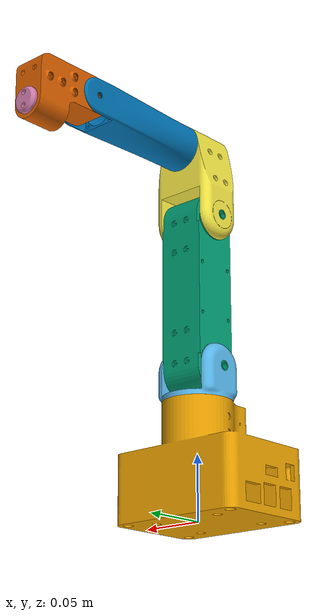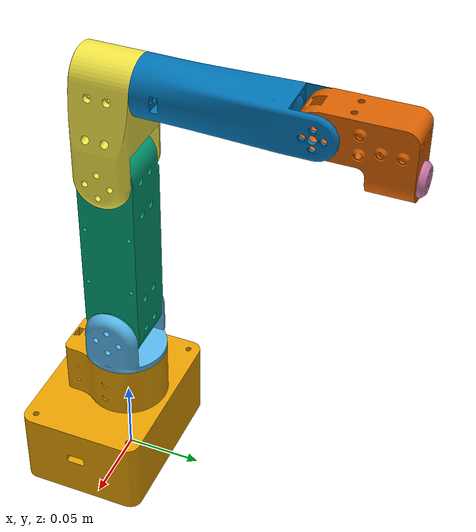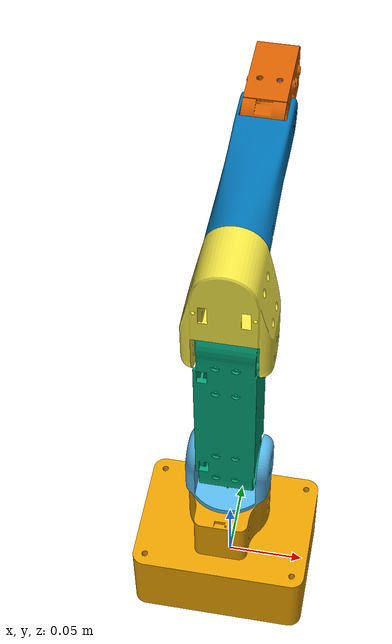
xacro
<?xml version="1.0"?>
<robot xmlns:xacro="http://www.ros.org/wiki/xacro" name="Frames">
    <xacro:arg name="initial_positions_file" default="initial_positions.yaml" />

    <!-- Import Frames urdf file -->
    <xacro:include filename="$(find frames_description)/urdf/frames.urdf" />

    <!-- Import control_xacro -->
    <xacro:include filename="Frames.ros2_control.xacro" />

    <xacro:Frames_ros2_control name="FakeSystem" initial_positions_file="$(arg initial_positions_file)"/>

</robot>

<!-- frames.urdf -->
<robot name="Frames" xmlns:xacro="http://www.ros.org/wiki/xacro">

<link name="frames_base_link">
  <inertial>
    <origin xyz="0.0005040855085333166 -0.010273094086501193 0.03542491363637938" rpy="0 0 0"/>
    <mass value="1.5130327428354182"/>
    <inertia ixx="0.001983" iyy="0.002709" izz="0.002959" ixy="6e-06" iyz="-3.5e-05" ixz="3e-05"/>
  </inertial>
  <visual>
    <origin xyz="0 0 0" rpy="0 0 0"/>
    <geometry>
      <mesh filename="package://frames_description/meshes/frames_base_link.stl" scale="0.001 0.001 0.001"/>
    </geometry>
  </visual>
  <collision>
    <origin xyz="0 0 0" rpy="0 0 0"/>
    <geometry>
      <mesh filename="package://frames_description/meshes/frames_base_link.stl" scale="0.001 0.001 0.001"/>
    </geometry>
  </collision>
</link>

<link name="frames_link1">
  <inertial>
    <origin xyz="-3.404725774509886e-05 -2.1010427580299316e-11 0.013790395795608756" rpy="0 0 0"/>
    <mass value="0.18511181553011938"/>
    <inertia ixx="5e-05" iyy="0.000101" izz="9.7e-05" ixy="-0.0" iyz="-0.0" ixz="0.0"/>
  </inertial>
  <visual>
    <origin xyz="0.00055 0.0 -0.0886" rpy="0 0 0"/>
    <geometry>
      <mesh filename="package://frames_description/meshes/frames_link1.stl" scale="0.001 0.001 0.001"/>
    </geometry>
  </visual>
  <collision>
    <origin xyz="0.00055 0.0 -0.0886" rpy="0 0 0"/>
    <geometry>
      <mesh filename="package://frames_description/meshes/frames_link1.stl" scale="0.001 0.001 0.001"/>
    </geometry>
  </collision>
</link>

<link name="frames_link2">
  <inertial>
    <origin xyz="0.025124340773863555 0.00015918221692612635 0.06025458578533169" rpy="0 0 0"/>
    <mass value="0.37661185911242273"/>
    <inertia ixx="0.000699" iyy="0.000674" izz="0.000137" ixy="1e-06" iyz="0.0" ixz="0.0"/>
  </inertial>
  <visual>
    <origin xyz="0.02705 0.0 -0.1126" rpy="0 0 0"/>
    <geometry>
      <mesh filename="package://frames_description/meshes/frames_link2.stl" scale="0.001 0.001 0.001"/>
    </geometry>
  </visual>
  <collision>
    <origin xyz="0.02705 0.0 -0.1126" rpy="0 0 0"/>
    <geometry>
      <mesh filename="package://frames_description/meshes/frames_link2.stl" scale="0.001 0.001 0.001"/>
    </geometry>
  </collision>
</link>

<link name="frames_link3">
  <inertial>
    <origin xyz="0.02652087793939466 0.00010090442859749642 0.02719951130554263" rpy="0 0 0"/>
    <mass value="0.3445625469275287"/>
    <inertia ixx="0.000203" iyy="0.000289" izz="0.00017" ixy="0.0" iyz="0.0" ixz="0.0"/>
  </inertial>
  <visual>
    <origin xyz="0.02705 0.0 -0.2331" rpy="0 0 0"/>
    <geometry>
      <mesh filename="package://frames_description/meshes/frames_link3.stl" scale="0.001 0.001 0.001"/>
    </geometry>
  </visual>
  <collision>
    <origin xyz="0.02705 0.0 -0.2331" rpy="0 0 0"/>
    <geometry>
      <mesh filename="package://frames_description/meshes/frames_link3.stl" scale="0.001 0.001 0.001"/>
    </geometry>
  </collision>
</link>

<link name="frames_link4">
  <inertial>
    <origin xyz="-1.518206498092329e-06 0.04461577742036456 1.3239624671035344e-06" rpy="0 0 0"/>
    <mass value="0.39024457935082074"/>
    <inertia ixx="0.000389" iyy="9.2e-05" izz="0.000401" ixy="-3e-06" iyz="-0.0" ixz="-0.0"/>
  </inertial>
  <visual>
    <origin xyz="0.00055 -0.01825 -0.29035" rpy="0 0 0"/>
    <geometry>
      <mesh filename="package://frames_description/meshes/frames_link4.stl" scale="0.001 0.001 0.001"/>
    </geometry>
  </visual>
  <collision>
    <origin xyz="0.00055 -0.01825 -0.29035" rpy="0 0 0"/>
    <geometry>
      <mesh filename="package://frames_description/meshes/frames_link4.stl" scale="0.001 0.001 0.001"/>
    </geometry>
  </collision>
</link>

<link name="frames_link5">
  <inertial>
    <origin xyz="0.012643550717544487 0.02709385501657724 -0.003236084058836186" rpy="0 0 0"/>
    <mass value="0.07930924998218244"/>
    <inertia ixx="5e-05" iyy="2.4e-05" izz="4.2e-05" ixy="-1e-06" iyz="4e-06" ixz="0.0"/>
  </inertial>
  <visual>
    <origin xyz="0.01505 -0.12345 -0.29035" rpy="0 0 0"/>
    <geometry>
      <mesh filename="package://frames_description/meshes/frames_link5.stl" scale="0.001 0.001 0.001"/>
    </geometry>
  </visual>
  <collision>
    <origin xyz="0.01505 -0.12345 -0.29035" rpy="0 0 0"/>
    <geometry>
      <mesh filename="package://frames_description/meshes/frames_link5.stl" scale="0.001 0.001 0.001"/>
    </geometry>
  </collision>
</link>

<link name="frames_link6">
  <inertial>
    <origin xyz="2.1560285923477931e-07 0.0018489662859189626 6.665609375566817e-08" rpy="0 0 0"/>
    <mass value="0.007968295840693102"/>
    <inertia ixx="0.0" iyy="0.0" izz="0.0" ixy="0.0" iyz="-0.0" ixz="0.0"/>
  </inertial>
  <visual>
    <origin xyz="0.00205 -0.17915 -0.26985" rpy="0 0 0"/>
    <geometry>
      <mesh filename="package://frames_description/meshes/frames_link6.stl" scale="0.001 0.001 0.001"/>
    </geometry>
  </visual>
  <collision>
    <origin xyz="0.00205 -0.17915 -0.26985" rpy="0 0 0"/>
    <geometry>
      <mesh filename="package://frames_description/meshes/frames_link6.stl" scale="0.001 0.001 0.001"/>
    </geometry>
  </collision>
</link>

<joint name="frames_joint1" type="revolute">
  <origin xyz="-0.00055 0.0 0.0886" rpy="0 0 0"/>
  <parent link="frames_base_link"/>
  <child link="frames_link1"/>
  <axis xyz="0.0 -0.0 -1.0"/>
  <limit effort="87" lower="-1.57" upper="1.57" velocity="2.3925" />
</joint>

<joint name="frames_joint2" type="revolute">
  <origin xyz="-0.0265 0.0 0.024" rpy="0 0 0"/>
  <parent link="frames_link1"/>
  <child link="frames_link2"/>
  <axis xyz="1.0 0.0 0.0"/>
  <limit effort="87" lower="-1.57" upper="1.57" velocity="2.3925" />
</joint>

<joint name="frames_joint3" type="revolute">
  <origin xyz="0.0 0.0 0.1205" rpy="0 0 0"/>
  <parent link="frames_link2"/>
  <child link="frames_link3"/>
  <axis xyz="1.0 0.0 0.0"/>
  <limit effort="87" lower="-1.57" upper="1.57" velocity="2.3925" />
</joint>

<joint name="frames_joint4" type="revolute">
  <origin xyz="0.0265 0.01825 0.05725" rpy="0 0 0"/>
  <parent link="frames_link3"/>
  <child link="frames_link4"/>
  <axis xyz="0.0 -1.0 -0.0"/>
  <limit effort="87" lower="-1.57" upper="1.57" velocity="2.3925" />
</joint>

<joint name="frames_joint5" type="revolute">
  <origin xyz="-0.0145 0.1052 0.0" rpy="0 0 0"/>
  <parent link="frames_link4"/>
  <child link="frames_link5"/>
  <axis xyz="1.0 -0.0 -0.0"/>
  <limit effort="87" lower="-1.57" upper="1.57" velocity="2.3925" />
</joint>

<joint name="frames_joint6" type="revolute">
  <origin xyz="0.013 0.0557 -0.0205" rpy="0 0 0"/>
  <parent link="frames_link5"/>
  <child link="frames_link6"/>
  <axis xyz="-0.0 -1.0 0.0"/>
  <limit effort="87" lower="-1.57" upper="1.57" velocity="2.3925" />
</joint>
</robot>
